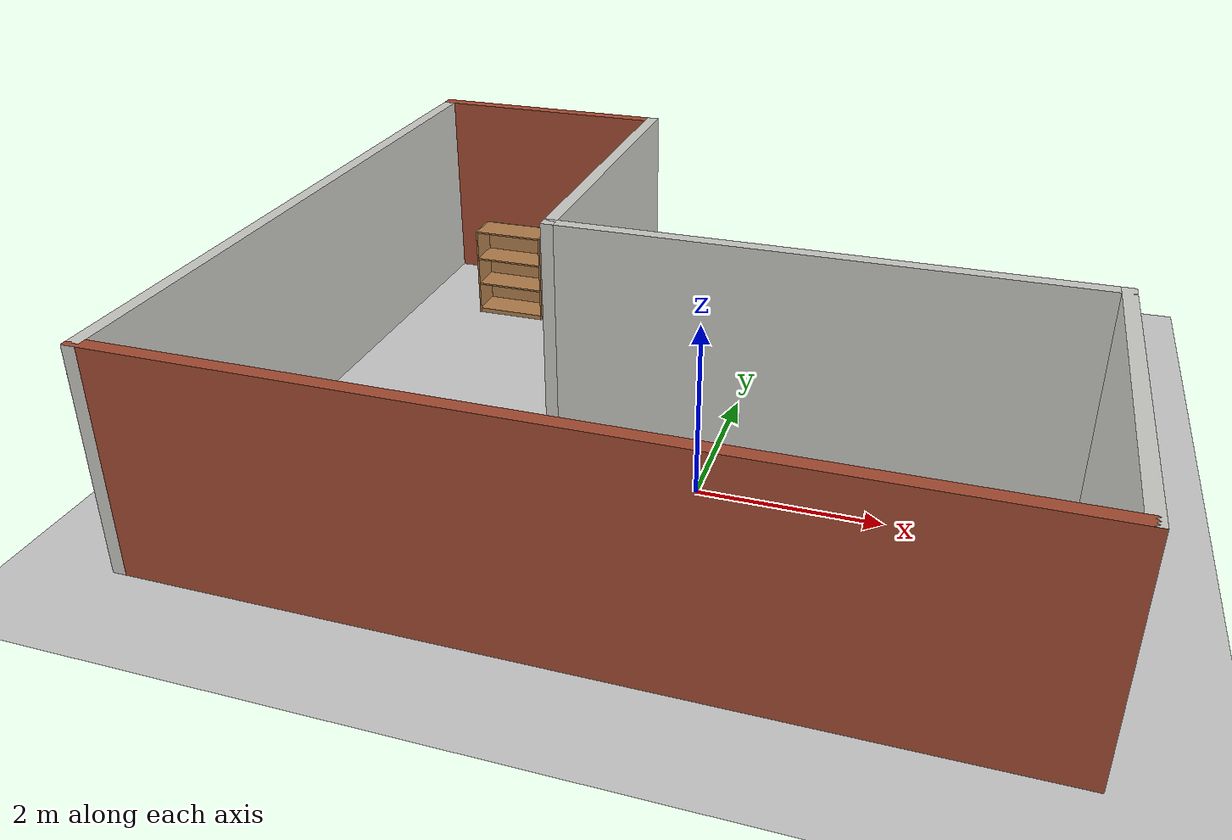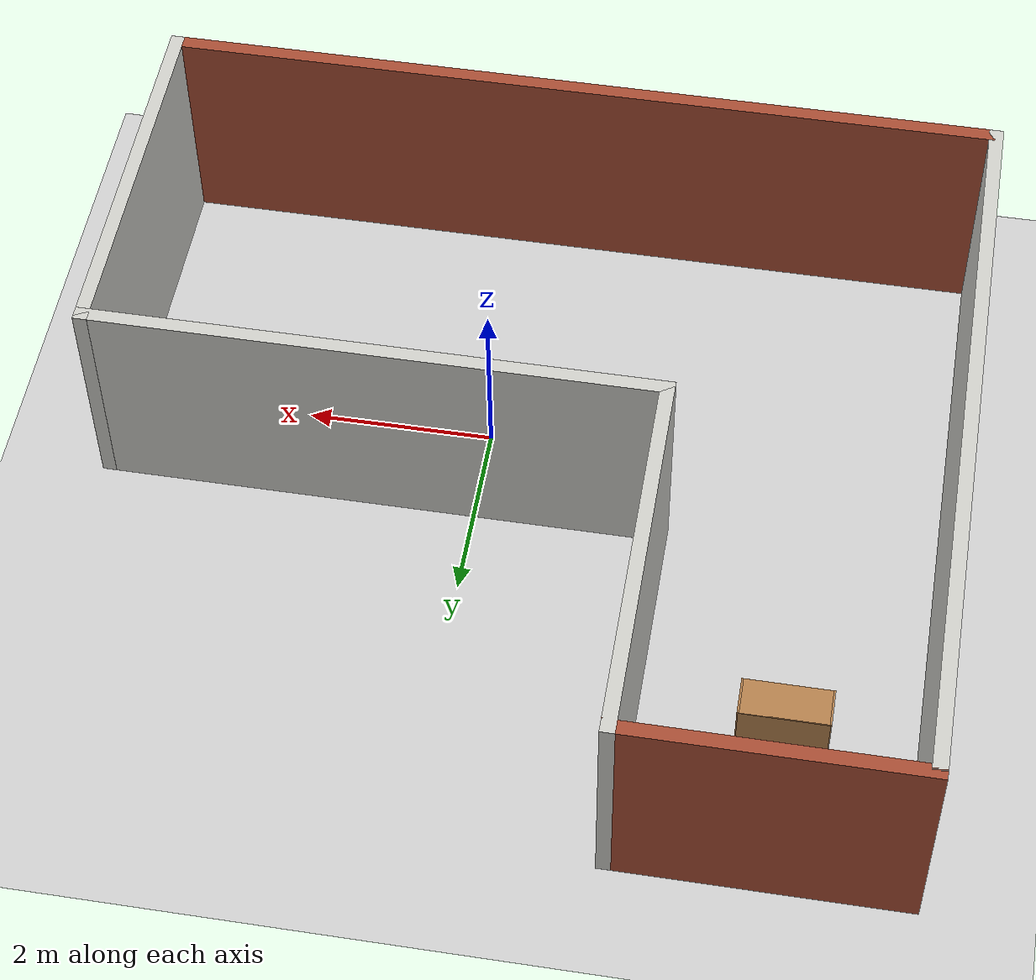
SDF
<sdf version="1.6">
 <world name="default">
  <light name="sun" type="directional">
   <pose>0 0 10 0 -0 0</pose>
   <diffuse>0.8 0.8 0.8 1</diffuse>
   <specular>0.2 0.2 0.2 1</specular>
   <attenuation>
    <range>1000</range>
    <constant>0.9</constant>
    <linear>0.01</linear>
    <quadratic>0.001</quadratic>
   </attenuation>
   <direction>-0.5 0.1 -0.9</direction>
  </light>
  <model name="ground_plane">
   <static>1</static>
   <link name="link">
    <collision name="collision">
     <geometry><plane><normal>0 0 1</normal><size>100 100</size></plane></geometry>
     <surface>
      <contact><collide_bitmask>65535</collide_bitmask></contact>
      <friction><ode><mu>100</mu><mu2>50</mu2></ode></friction>
     </surface>
    </collision>
    <visual name="visual">
     <cast_shadows>0</cast_shadows>
     <geometry><plane><normal>0 0 1</normal><size>100 100</size></plane></geometry>
     <material>
      <script><uri>file://media/materials/scripts/gazebo.material</uri><name>Gazebo/Grey</name></script>
     </material>
    </visual>
   </link>
  </model>
  <physics name="default_physics" default="0" type="ode">
   <max_step_size>0.01</max_step_size>
   <real_time_factor>1</real_time_factor>
   <real_time_update_rate>100</real_time_update_rate>
  </physics>
  <gravity>0 0 -9.8</gravity>
  <magnetic_field>6e-06 2.3e-05 -4.2e-05</magnetic_field>
  <atmosphere type="adiabatic"/>
  <scene><ambient>0.4 0.4 0.4 1</ambient><background>0.7 0.7 0.7 1</background><shadows>1</shadows></scene>
  <spherical_coordinates>
   <surface_model>EARTH_WGS84</surface_model>
   <latitude_deg>0</latitude_deg>
   <longitude_deg>0</longitude_deg>
   <elevation>0</elevation>
   <heading_deg>0</heading_deg>
  </spherical_coordinates>
  <model name="myworld">
   <pose>-0.5 1 0 0 -0 0</pose>
   <link name="Wall_1">
    <collision name="Wall_1_Collision">
     <geometry><box><size>3.15 0.15 2.5</size></box></geometry>
     <pose>0 0 1.25 0 -0 0</pose>
    </collision>
    <visual name="Wall_1_Visual">
     <pose>0 0 1.25 0 -0 0</pose>
     <geometry><box><size>3.15 0.15 2.5</size></box></geometry>
     <material>
      <script><uri>file://media/materials/scripts/gazebo.material</uri><name>Gazebo/Bricks</name></script>
      <ambient>1 1 1 1</ambient>
     </material>
     <meta><layer>0</layer></meta>
    </visual>
    <pose>-3 4 0 0 -0 3.14159</pose>
   </link>
   <link name="Wall_11">
    <collision name="Wall_11_Collision">
     <geometry><box><size>9.15 0.15 2.5</size></box></geometry>
     <pose>0 0 1.25 0 -0 0</pose>
    </collision>
    <visual name="Wall_11_Visual">
     <pose>0 0 1.25 0 -0 0</pose>
     <geometry><box><size>9.15 0.15 2.5</size></box></geometry>
     <material>
      <script><uri>file://media/materials/scripts/gazebo.material</uri><name>Gazebo/Bricks</name></script>
      <ambient>0.996078 0.47451 0.0196078 1</ambient>
     </material>
     <meta><layer>0</layer></meta>
    </visual>
    <pose>0 -4 0 0 -0 3.14159</pose>
   </link>
   <link name="Wall_12">
    <collision name="Wall_12_Collision">
     <geometry><box><size>8.15 0.15 2.5</size></box></geometry>
     <pose>0 0 1.25 0 -0 0</pose>
    </collision>
    <visual name="Wall_12_Visual">
     <pose>0 0 1.25 0 -0 0</pose>
     <geometry><box><size>8.15 0.15 2.5</size></box></geometry>
     <material>
      <script><uri>file://media/materials/scripts/gazebo.material</uri><name>Gazebo/CeilingTiled</name></script>
      <ambient>0.760784 0.662745 0.627451 1</ambient>
     </material>
     <meta><layer>0</layer></meta>
    </visual>
    <pose>-4.5 0 0 0 -0 1.5708</pose>
   </link>
   <link name="Wall_5">
    <collision name="Wall_5_Collision">
     <geometry><box><size>4.15 0.15 2.5</size></box></geometry>
     <pose>0 0 1.25 0 -0 0</pose>
    </collision>
    <visual name="Wall_5_Visual">
     <pose>0 0 1.25 0 -0 0</pose>
     <geometry><box><size>4.15 0.15 2.5</size></box></geometry>
     <material>
      <script><uri>file://media/materials/scripts/gazebo.material</uri><name>Gazebo/CeilingTiled</name></script>
      <ambient>0.435294 0.796078 0.67451 1</ambient>
     </material>
     <meta><layer>0</layer></meta>
    </visual>
    <pose>-1.5 2 0 0 0 -1.5708</pose>
   </link>
   <link name="Wall_7">
    <collision name="Wall_7_Collision">
     <geometry><box><size>6.15 0.15 2.5</size></box></geometry>
     <pose>0 0 1.25 0 -0 0</pose>
    </collision>
    <visual name="Wall_7_Visual">
     <pose>0 0 1.25 0 -0 0</pose>
     <geometry><box><size>6.15 0.15 2.5</size></box></geometry>
     <material>
      <script><uri>file://media/materials/scripts/gazebo.material</uri><name>Gazebo/CeilingTiled</name></script>
      <ambient>0.996078 0.47451 0.0196078 1</ambient>
     </material>
     <meta><layer>0</layer></meta>
    </visual>
    <pose>1.5 0 0 0 -0 0</pose>
   </link>
   <link name="Wall_9">
    <collision name="Wall_9_Collision">
     <geometry><box><size>4.15 0.15 2.5</size></box></geometry>
     <pose>0 0 1.25 0 -0 0</pose>
    </collision>
    <visual name="Wall_9_Visual">
     <pose>0 0 1.25 0 -0 0</pose>
     <geometry><box><size>4.15 0.15 2.5</size></box></geometry>
     <material>
      <script><uri>file://media/materials/scripts/gazebo.material</uri><name>Gazebo/CeilingTiled</name></script>
      <ambient>1 1 1 1</ambient>
     </material>
     <meta><layer>0</layer></meta>
    </visual>
    <pose>4.5 -2 0 0 0 -1.5708</pose>
   </link>
   <static>1</static>
  </model>
  <model name="bookshelf">
   <static>1</static>
   <link name="link">
    <inertial><mass>1</mass></inertial>
    <collision name="back">
     <pose>0 0.005 0.6 0 -0 0</pose>
     <geometry><box><size>0.9 0.01 1.2</size></box></geometry>
    </collision>
    <visual name="visual1">
     <pose>0 0.005 0.6 0 -0 0</pose>
     <geometry><box><size>0.9 0.01 1.2</size></box></geometry>
     <material>
      <script><uri>file://media/materials/scripts/gazebo.material</uri><name>Gazebo/Wood</name></script>
     </material>
    </visual>
    <collision name="left_side">
     <pose>0.45 -0.195 0.6 0 -0 0</pose>
     <geometry><box><size>0.02 0.4 1.2</size></box></geometry>
    </collision>
    <visual name="visual2">
     <pose>0.45 -0.195 0.6 0 -0 0</pose>
     <geometry><box><size>0.02 0.4 1.2</size></box></geometry>
     <material>
      <script><uri>file://media/materials/scripts/gazebo.material</uri><name>Gazebo/Wood</name></script>
     </material>
    </visual>
    <collision name="right_side">
     <pose>-0.45 -0.195 0.6 0 -0 0</pose>
     <geometry><box><size>0.02 0.4 1.2</size></box></geometry>
    </collision>
    <visual name="visual3">
     <pose>-0.45 -0.195 0.6 0 -0 0</pose>
     <geometry><box><size>0.02 0.4 1.2</size></box></geometry>
     <material>
      <script><uri>file://media/materials/scripts/gazebo.material</uri><name>Gazebo/Wood</name></script>
     </material>
    </visual>
    <collision name="bottom">
     <pose>0 -0.195 0.03 0 -0 0</pose>
     <geometry><box><size>0.88 0.4 0.06</size></box></geometry>
    </collision>
    <visual name="visual4">
     <pose>0 -0.195 0.03 0 -0 0</pose>
     <geometry><box><size>0.88 0.4 0.06</size></box></geometry>
     <material>
      <script><uri>file://media/materials/scripts/gazebo.material</uri><name>Gazebo/Wood</name></script>
     </material>
    </visual>
    <collision name="top">
     <pose>0 -0.195 1.19 0 -0 0</pose>
     <geometry><box><size>0.88 0.4 0.02</size></box></geometry>
    </collision>
    <visual name="visual5">
     <pose>0 -0.195 1.19 0 -0 0</pose>
     <geometry><box><size>0.88 0.4 0.02</size></box></geometry>
     <material>
      <script><uri>file://media/materials/scripts/gazebo.material</uri><name>Gazebo/Wood</name></script>
     </material>
    </visual>
    <collision name="low_shelf">
     <pose>0 -0.195 0.43 0 -0 0</pose>
     <geometry><box><size>0.88 0.4 0.02</size></box></geometry>
    </collision>
    <visual name="visual6">
     <pose>0 -0.195 0.43 0 -0 0</pose>
     <geometry><box><size>0.88 0.4 0.02</size></box></geometry>
     <material>
      <script><uri>file://media/materials/scripts/gazebo.material</uri><name>Gazebo/Wood</name></script>
     </material>
    </visual>
    <collision name="high_shelf">
     <pose>0 -0.195 0.8 0 -0 0</pose>
     <geometry><box><size>0.88 0.4 0.02</size></box></geometry>
    </collision>
    <visual name="visual7">
     <pose>0 -0.195 0.8 0 -0 0</pose>
     <geometry><box><size>0.88 0.4 0.02</size></box></geometry>
     <material>
      <script><uri>file://media/materials/scripts/gazebo.material</uri><name>Gazebo/Wood</name></script>
     </material>
    </visual>
   </link>
   <pose>-3.56002 3.83958 0 0 -0 0</pose>
  </model>
 </world>
</sdf>
